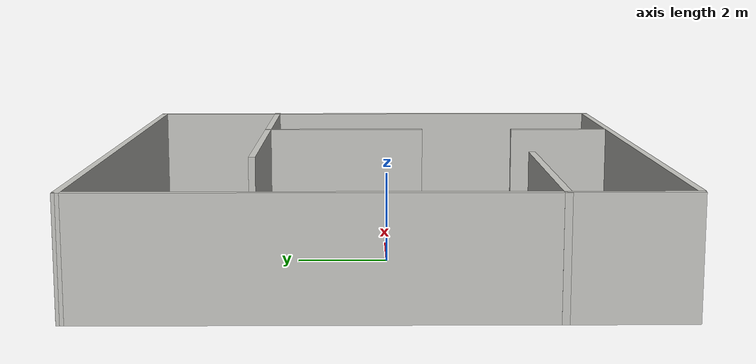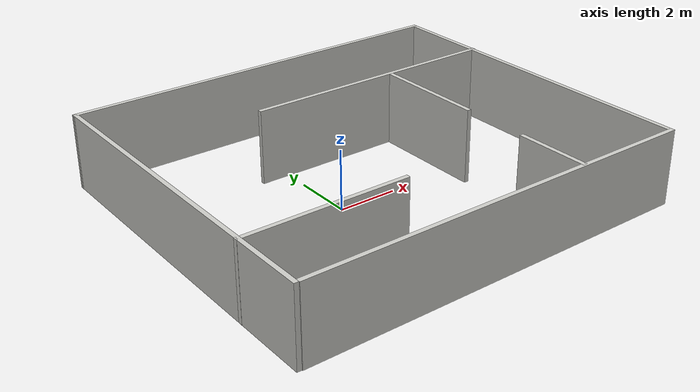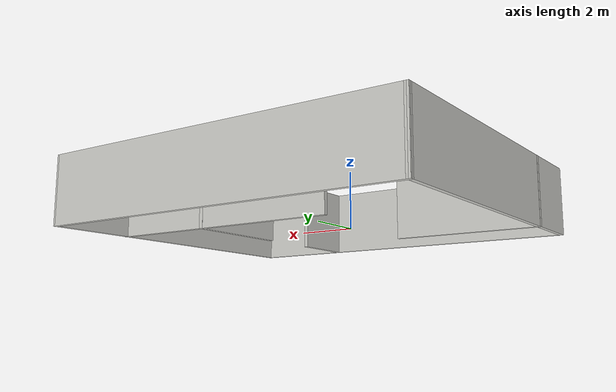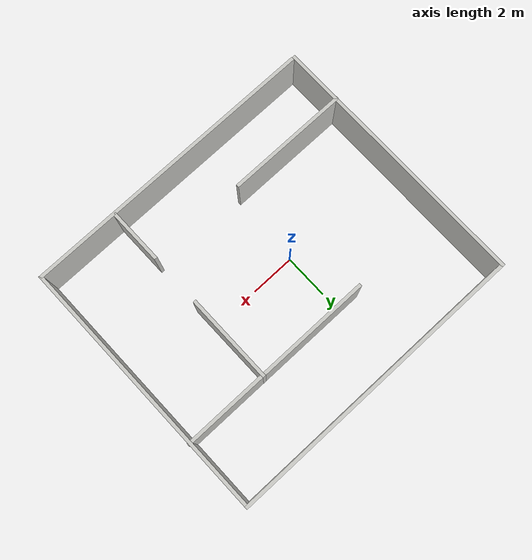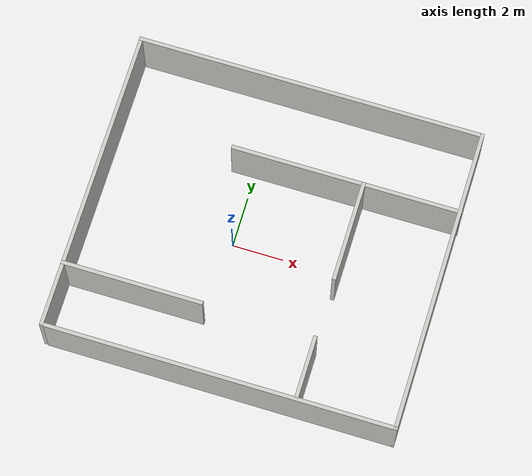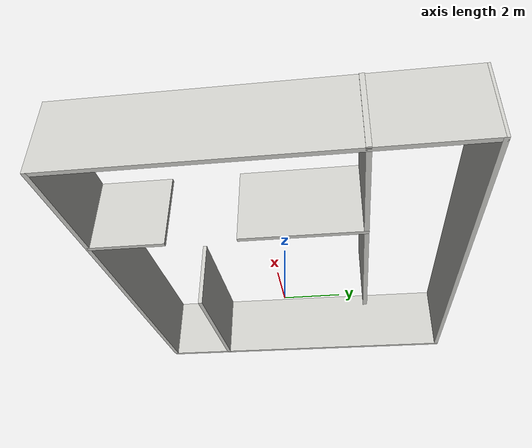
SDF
<?xml version='1.0'?>
<sdf version='1.7'>
  <model name='momanip'>
    <pose>1.2311 0.217821 0 0 -0 0</pose>
    <link name='Wall_12'>
      <collision name='Wall_12_Collision'>
        <geometry>
          <box>
            <size>12 0.15 2.5</size>
          </box>
        </geometry>
        <pose>0 0 1.25 0 -0 0</pose>
      </collision>
      <visual name='Wall_12_Visual'>
        <pose>0 0 1.25 0 -0 0</pose>
        <geometry>
          <box>
            <size>12 0.15 2.5</size>
          </box>
        </geometry>
        <material>
          <script>
            <uri>file://media/materials/scripts/gazebo.material</uri>
            <name>Gazebo/CeilingTiled</name>
          </script>
          <ambient>1 1 1 1</ambient>
        </material>
        <meta>
          <layer>0</layer>
        </meta>
      </visual>
      <pose>-6.76138 0.012311 0 0 -0 -1.5708</pose>
    </link>
    <link name='Wall_14'>
      <collision name='Wall_14_Collision'>
        <geometry>
          <box>
            <size>13.6502 0.15 2.5</size>
          </box>
        </geometry>
        <pose>0 0 1.25 0 -0 0</pose>
      </collision>
      <visual name='Wall_14_Visual'>
        <pose>0 0 1.25 0 -0 0</pose>
        <geometry>
          <box>
            <size>13.6502 0.15 2.5</size>
          </box>
        </geometry>
        <material>
          <script>
            <uri>file://media/materials/scripts/gazebo.material</uri>
            <name>Gazebo/CeilingTiled</name>
          </script>
          <ambient>1 1 1 1</ambient>
        </material>
        <meta>
          <layer>0</layer>
        </meta>
      </visual>
      <pose>-0.011279 5.92493 0 0 -0 -0.001834</pose>
    </link>
    <link name='Wall_18'>
      <collision name='Wall_18_Collision'>
        <geometry>
          <box>
            <size>9 0.15 2.5</size>
          </box>
        </geometry>
        <pose>0 0 1.25 0 -0 0</pose>
      </collision>
      <visual name='Wall_18_Visual'>
        <pose>0 0 1.25 0 -0 0</pose>
        <geometry>
          <box>
            <size>9 0.15 2.5</size>
          </box>
        </geometry>
        <material>
          <script>
            <uri>file://media/materials/scripts/gazebo.material</uri>
            <name>Gazebo/CeilingTiled</name>
          </script>
          <ambient>1 1 1 1</ambient>
        </material>
        <meta>
          <layer>0</layer>
        </meta>
      </visual>
      <pose>2.33974 2.73786 0 0 -0 0</pose>
    </link>
    <link name='Wall_21'>
      <collision name='Wall_21_Collision'>
        <geometry>
          <box>
            <size>4 0.15 2.5</size>
          </box>
        </geometry>
        <pose>0 0 1.25 0 -0 0</pose>
      </collision>
      <visual name='Wall_21_Visual'>
        <pose>0 0 1.25 0 -0 0</pose>
        <geometry>
          <box>
            <size>4 0.15 2.5</size>
          </box>
        </geometry>
        <material>
          <script>
            <uri>file://media/materials/scripts/gazebo.material</uri>
            <name>Gazebo/CeilingTiled</name>
          </script>
          <ambient>1 1 1 1</ambient>
        </material>
        <meta>
          <layer>0</layer>
        </meta>
      </visual>
      <pose>3.00426 0.816237 0 0 -0 -1.5708</pose>
    </link>
    <link name='Wall_24'>
      <collision name='Wall_24_Collision'>
        <geometry>
          <box>
            <size>2.5 0.15 2.5</size>
          </box>
        </geometry>
        <pose>0 0 1.25 0 -0 0</pose>
      </collision>
      <visual name='Wall_24_Visual'>
        <pose>0 0 1.25 0 -0 0</pose>
        <geometry>
          <box>
            <size>2.5 0.15 2.5</size>
          </box>
        </geometry>
        <material>
          <script>
            <uri>file://media/materials/scripts/gazebo.material</uri>
            <name>Gazebo/CeilingTiled</name>
          </script>
          <ambient>1 1 1 1</ambient>
        </material>
        <meta>
          <layer>0</layer>
        </meta>
      </visual>
      <pose>2.97978 -4.7028 0 0 -0 -1.5708</pose>
    </link>
    <link name='Wall_28'>
      <collision name='Wall_28_Collision'>
        <geometry>
          <box>
            <size>5.5 0.15 2.5</size>
          </box>
        </geometry>
        <pose>0 0 1.25 0 -0 0</pose>
      </collision>
      <visual name='Wall_28_Visual'>
        <pose>0 0 1.25 0 -0 0</pose>
        <geometry>
          <box>
            <size>5.5 0.15 2.5</size>
          </box>
        </geometry>
        <material>
          <script>
            <uri>file://media/materials/scripts/gazebo.material</uri>
            <name>Gazebo/CeilingTiled</name>
          </script>
          <ambient>1 1 1 1</ambient>
        </material>
        <meta>
          <layer>0</layer>
        </meta>
      </visual>
      <pose>-4.08974 -3.45744 0 0 -0 0</pose>
    </link>
    <link name='Wall_8'>
      <collision name='Wall_8_Collision'>
        <geometry>
          <box>
            <size>13.5 0.15 2.5</size>
          </box>
        </geometry>
        <pose>0 0 1.25 0 -0 0</pose>
      </collision>
      <visual name='Wall_8_Visual'>
        <pose>0 0 1.25 0 -0 0</pose>
        <geometry>
          <box>
            <size>13.5 0.15 2.5</size>
          </box>
        </geometry>
        <material>
          <script>
            <uri>file://media/materials/scripts/gazebo.material</uri>
            <name>Gazebo/CeilingTiled</name>
          </script>
          <ambient>1 1 1 1</ambient>
        </material>
        <meta>
          <layer>0</layer>
        </meta>
      </visual>
      <pose>0.063821 -5.93745 0 0 -0 0</pose>
    </link>
    <link name='Wall_9'>
      <collision name='Wall_9_Collision'>
        <geometry>
          <box>
            <size>12 0.15 2.5</size>
          </box>
        </geometry>
        <pose>0 0 1.25 0 -0 0</pose>
      </collision>
      <visual name='Wall_9_Visual'>
        <pose>0 0 1.25 0 -0 0</pose>
        <geometry>
          <box>
            <size>12 0.15 2.5</size>
          </box>
        </geometry>
        <material>
          <script>
            <uri>file://media/materials/scripts/gazebo.material</uri>
            <name>Gazebo/CeilingTiled</name>
          </script>
          <ambient>1 1 1 1</ambient>
        </material>
        <meta>
          <layer>0</layer>
        </meta>
      </visual>
      <pose>6.73882 -0.012448 0 0 -0 1.5708</pose>
    </link>
    <static>1</static>
  </model>
</sdf>
